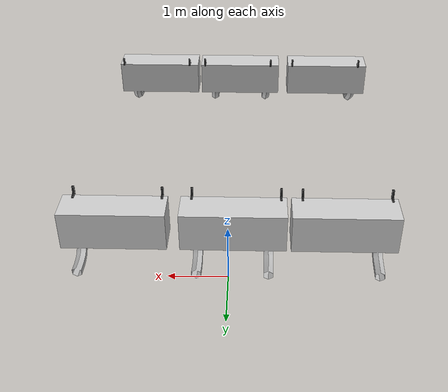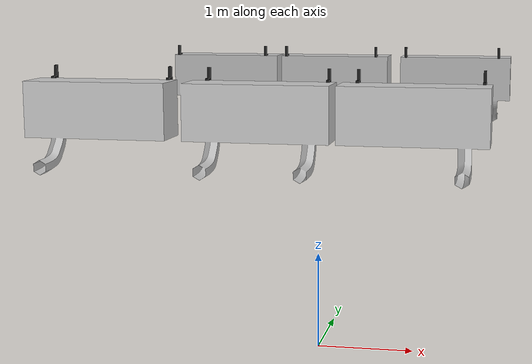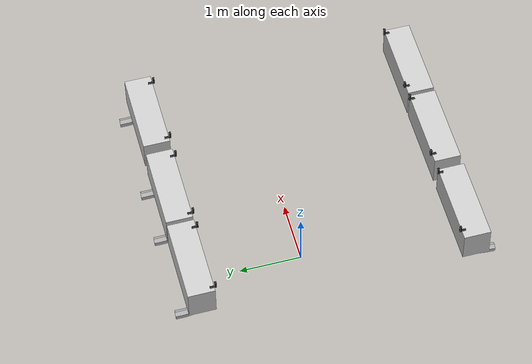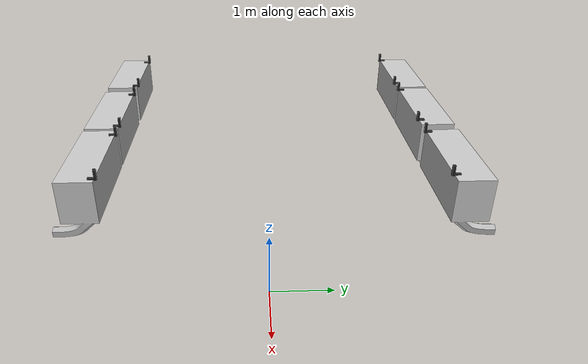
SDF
<?xml version='1.0'?>
<sdf version='1.8'>
  <model name='air_conditioner'>
    <static>1</static>
    <link name="link">
      <visual name="visual">
        <cast_shadows>false</cast_shadows>
        <geometry>
          <mesh>
            <uri>model://air_conditioner/meshes/air_conditioner.dae</uri>
          </mesh>
        </geometry>
      </visual>
    </link>
  </model>
</sdf>
